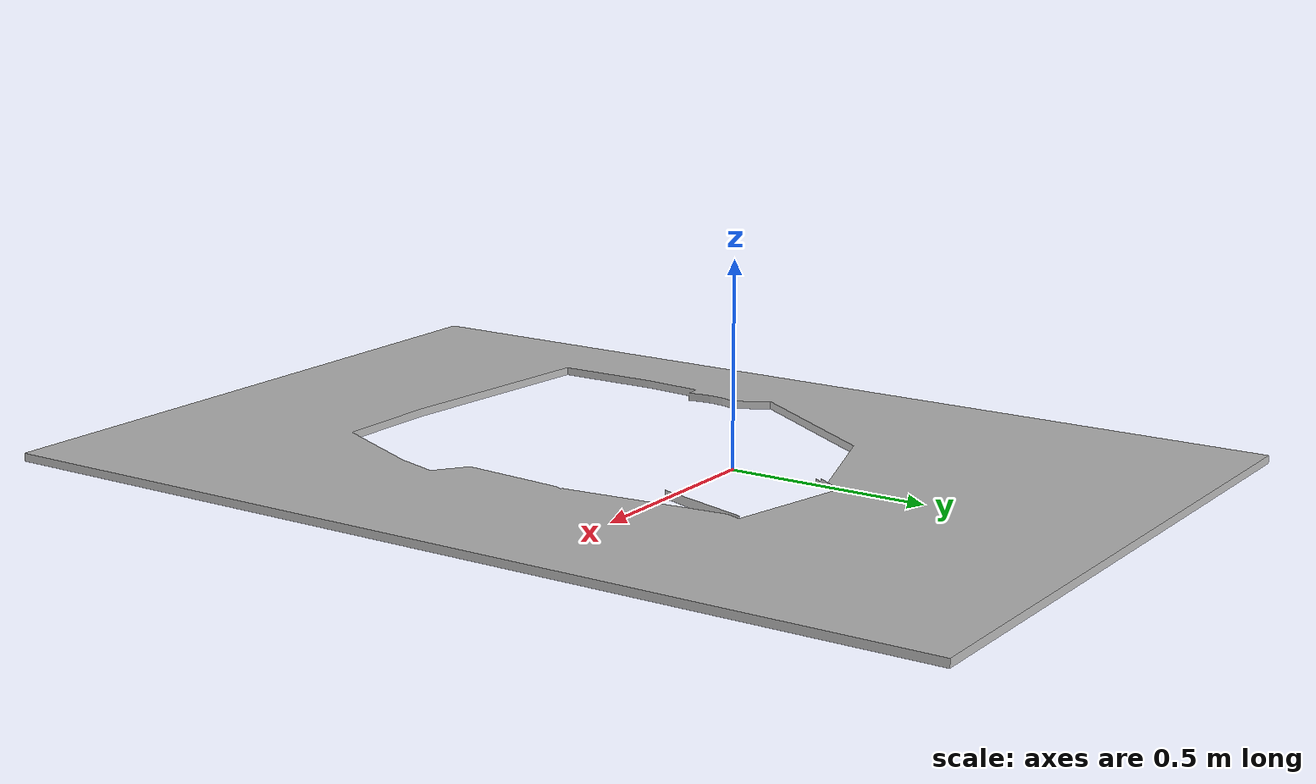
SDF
<?xml version='1.0'?>
<sdf version="1.6">
<model name="win">
  <static>true</static>
    <link name="link">
      <visual name="visual">
        <geometry>
          <mesh>
            <scale>0.2 0.2 0.01</scale>
            <uri>model://win/meshes/win.dae</uri>
          </mesh>
        </geometry>
      </visual>

      <collision name="window">
        <geometry>
          <mesh>
            <scale>0.2 0.2 0.01</scale>
            <uri>model://win/meshes/win.dae</uri>
          </mesh>
        </geometry>
      </collision>
    </link>
  </model>
</sdf>
